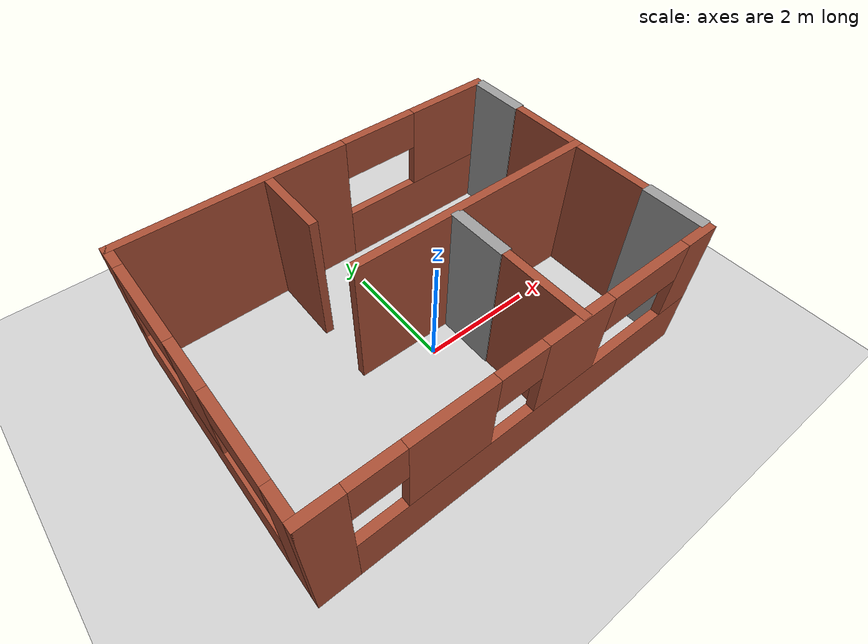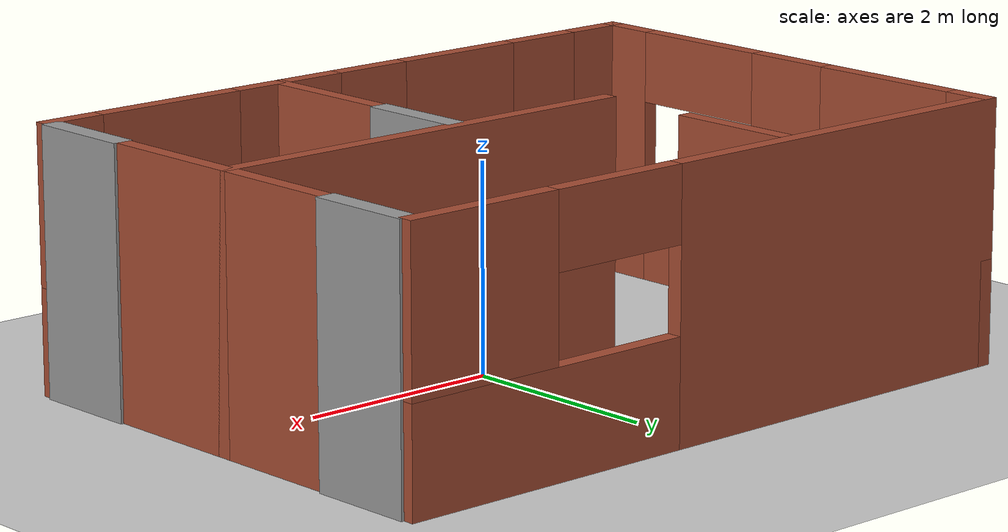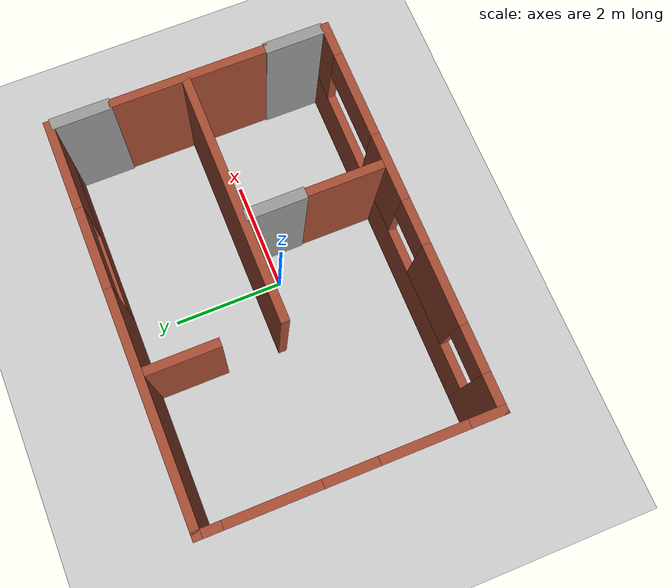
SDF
<sdf version="1.7">
 <world name="default">
  <light name="sun" type="directional">
   <pose>0 0 10 0 -0 0</pose>
   <diffuse>0.8 0.8 0.8 1</diffuse>
   <specular>0.2 0.2 0.2 1</specular>
   <attenuation>
    <range>1000</range>
    <constant>0.9</constant>
    <linear>0.01</linear>
    <quadratic>0.001</quadratic>
   </attenuation>
   <direction>-0.5 0.1 -0.9</direction>
   <spot><inner_angle>0</inner_angle><outer_angle>0</outer_angle><falloff>0</falloff></spot>
  </light>
  <model name="ground_plane">
   <static>1</static>
   <link name="link">
    <collision name="collision">
     <geometry><plane><normal>0 0 1</normal><size>100 100</size></plane></geometry>
     <surface>
      <contact><collide_bitmask>65535</collide_bitmask></contact>
      <friction><ode><mu>100</mu><mu2>50</mu2></ode></friction>
     </surface>
    </collision>
    <visual name="visual">
     <cast_shadows>0</cast_shadows>
     <geometry><plane><normal>0 0 1</normal><size>100 100</size></plane></geometry>
     <material>
      <script><uri>file://media/materials/scripts/gazebo.material</uri><name>Gazebo/Grey</name></script>
     </material>
    </visual>
   </link>
  </model>
  <gravity>0 0 -9.8</gravity>
  <magnetic_field>6e-06 2.3e-05 -4.2e-05</magnetic_field>
  <atmosphere type="adiabatic"/>
  <physics type="ode">
   <max_step_size>0.001</max_step_size>
   <real_time_factor>1</real_time_factor>
   <real_time_update_rate>1000</real_time_update_rate>
  </physics>
  <scene><ambient>0.4 0.4 0.4 1</ambient><background>0.7 0.7 0.7 1</background><shadows>1</shadows></scene>
  <spherical_coordinates>
   <surface_model>EARTH_WGS84</surface_model>
   <latitude_deg>0</latitude_deg>
   <longitude_deg>0</longitude_deg>
   <elevation>0</elevation>
   <heading_deg>0</heading_deg>
  </spherical_coordinates>
  <model name="meu_mapa2">
   <pose>-0.18123 1.4884 0 0 -0 0</pose>
   <link name="Door_7">
    <collision name="Door_7_Collision">
     <geometry><box><size>1.054 0.2 2.5</size></box></geometry>
     <pose>0 0 1.25 0 -0 0</pose>
    </collision>
    <visual name="Door_7_Visual">
     <pose>0 0 1.25 0 -0 0</pose>
     <geometry><box><size>1.054 0.2 2.5</size></box></geometry>
     <material>
      <script><uri>file://media/materials/scripts/gazebo.material</uri><name>Gazebo/Grey</name></script>
     </material>
    </visual>
    <pose>3.42812 -3.00431 0 0 -0 1.5691</pose>
   </link>
   <link name="Door_8">
    <collision name="Door_8_Collision">
     <geometry><box><size>1.03035 0.2 2.5</size></box></geometry>
     <pose>0 0 1.25 0 -0 0</pose>
    </collision>
    <visual name="Door_8_Visual">
     <pose>0 0 1.25 0 -0 0</pose>
     <geometry><box><size>1.03035 0.2 2.5</size></box></geometry>
     <material>
      <script><uri>file://media/materials/scripts/gazebo.material</uri><name>Gazebo/Grey</name></script>
     </material>
    </visual>
    <pose>3.42778 0.735647 0 0 -0 1.57202</pose>
   </link>
   <link name="Door_9">
    <collision name="Door_9_Collision">
     <geometry><box><size>1.048 0.2 2.5</size></box></geometry>
     <pose>0 0 1.25 0 -0 0</pose>
    </collision>
    <visual name="Door_9_Visual">
     <pose>0 0 1.25 0 -0 0</pose>
     <geometry><box><size>1.048 0.2 2.5</size></box></geometry>
     <material>
      <script><uri>file://media/materials/scripts/gazebo.material</uri><name>Gazebo/Grey</name></script>
     </material>
    </visual>
    <pose>0.829551 -1.63396 0 0 0 -1.56781</pose>
   </link>
   <link name="Wall_39">
    <pose>0 -3.5705 0 0 -0 0</pose>
    <visual name="Wall_39_Visual_0">
     <pose>-3.1649 0 1.25 0 -0 0</pose>
     <geometry><box><size>0.670203 0.15 2.5</size></box></geometry>
     <material>
      <script><uri>file://media/materials/scripts/gazebo.material</uri><name>Gazebo/Bricks</name></script>
      <ambient>1 1 1 1</ambient>
     </material>
     <meta><layer>0</layer></meta>
    </visual>
    <collision name="Wall_39_Collision_0">
     <geometry><box><size>0.670203 0.15 2.5</size></box></geometry>
     <pose>-3.1649 0 1.25 0 -0 0</pose>
    </collision>
    <visual name="Wall_39_Visual_1">
     <pose>0.335102 0 0.5 0 -0 0</pose>
     <geometry><box><size>6.3298 0.15 1</size></box></geometry>
     <material>
      <script><uri>file://media/materials/scripts/gazebo.material</uri><name>Gazebo/Bricks</name></script>
      <ambient>1 1 1 1</ambient>
     </material>
     <meta><layer>0</layer></meta>
    </visual>
    <collision name="Wall_39_Collision_1">
     <geometry><box><size>6.3298 0.15 1</size></box></geometry>
     <pose>0.335102 0 0.5 0 -0 0</pose>
    </collision>
    <visual name="Wall_39_Visual_2">
     <pose>-1.34357 0 1.75 0 -0 0</pose>
     <geometry><box><size>1.37245 0.15 1.5</size></box></geometry>
     <material>
      <script><uri>file://media/materials/scripts/gazebo.material</uri><name>Gazebo/Bricks</name></script>
      <ambient>1 1 1 1</ambient>
     </material>
     <meta><layer>0</layer></meta>
    </visual>
    <collision name="Wall_39_Collision_2">
     <geometry><box><size>1.37245 0.15 1.5</size></box></geometry>
     <pose>-1.34357 0 1.75 0 -0 0</pose>
    </collision>
    <visual name="Wall_39_Visual_3">
     <pose>0.742884 0 1.75 0 -0 0</pose>
     <geometry><box><size>1.20045 0.15 1.5</size></box></geometry>
     <material>
      <script><uri>file://media/materials/scripts/gazebo.material</uri><name>Gazebo/Bricks</name></script>
      <ambient>1 1 1 1</ambient>
     </material>
     <meta><layer>0</layer></meta>
    </visual>
    <collision name="Wall_39_Collision_3">
     <geometry><box><size>1.20045 0.15 1.5</size></box></geometry>
     <pose>0.742884 0 1.75 0 -0 0</pose>
    </collision>
    <visual name="Wall_39_Visual_4">
     <pose>3.19156 0 1.75 0 -0 0</pose>
     <geometry><box><size>0.616889 0.15 1.5</size></box></geometry>
     <material>
      <script><uri>file://media/materials/scripts/gazebo.material</uri><name>Gazebo/Bricks</name></script>
      <ambient>1 1 1 1</ambient>
     </material>
     <meta><layer>0</layer></meta>
    </visual>
    <collision name="Wall_39_Collision_4">
     <geometry><box><size>0.616889 0.15 1.5</size></box></geometry>
     <pose>3.19156 0 1.75 0 -0 0</pose>
    </collision>
    <visual name="Wall_39_Visual_5">
     <pose>-2.4298 0 2.15 0 -0 0</pose>
     <geometry><box><size>0.8 0.15 0.7</size></box></geometry>
     <material>
      <script><uri>file://media/materials/scripts/gazebo.material</uri><name>Gazebo/Bricks</name></script>
      <ambient>1 1 1 1</ambient>
     </material>
     <meta><layer>0</layer></meta>
    </visual>
    <collision name="Wall_39_Collision_5">
     <geometry><box><size>0.8 0.15 0.7</size></box></geometry>
     <pose>-2.4298 0 2.15 0 -0 0</pose>
    </collision>
    <visual name="Wall_39_Visual_6">
     <pose>-0.257342 0 2.15 0 -0 0</pose>
     <geometry><box><size>0.8 0.15 0.7</size></box></geometry>
     <material>
      <script><uri>file://media/materials/scripts/gazebo.material</uri><name>Gazebo/Bricks</name></script>
      <ambient>1 1 1 1</ambient>
     </material>
     <meta><layer>0</layer></meta>
    </visual>
    <collision name="Wall_39_Collision_6">
     <geometry><box><size>0.8 0.15 0.7</size></box></geometry>
     <pose>-0.257342 0 2.15 0 -0 0</pose>
    </collision>
    <visual name="Wall_39_Visual_7">
     <pose>2.11311 0 2.15 0 -0 0</pose>
     <geometry><box><size>1.54 0.15 0.7</size></box></geometry>
     <material>
      <script><uri>file://media/materials/scripts/gazebo.material</uri><name>Gazebo/Bricks</name></script>
      <ambient>1 1 1 1</ambient>
     </material>
     <meta><layer>0</layer></meta>
    </visual>
    <collision name="Wall_39_Collision_7">
     <geometry><box><size>1.54 0.15 0.7</size></box></geometry>
     <pose>2.11311 0 2.15 0 -0 0</pose>
    </collision>
   </link>
   <link name="Wall_41">
    <pose>-3.425 -1.1455 0 0 -0 1.5708</pose>
    <visual name="Wall_41_Visual_0">
     <pose>-2.19029 0 1.25 0 -0 0</pose>
     <geometry><box><size>0.619419 0.15 2.5</size></box></geometry>
     <material>
      <script><uri>file://media/materials/scripts/gazebo.material</uri><name>Gazebo/Bricks</name></script>
      <ambient>1 1 1 1</ambient>
     </material>
     <meta><layer>0</layer></meta>
    </visual>
    <collision name="Wall_41_Collision_0">
     <geometry><box><size>0.619419 0.15 2.5</size></box></geometry>
     <pose>-2.19029 0 1.25 0 -0 0</pose>
    </collision>
    <visual name="Wall_41_Visual_1">
     <pose>0.30971 0 0.5 0 -0 0</pose>
     <geometry><box><size>4.38058 0.15 1</size></box></geometry>
     <material>
      <script><uri>file://media/materials/scripts/gazebo.material</uri><name>Gazebo/Bricks</name></script>
      <ambient>1 1 1 1</ambient>
     </material>
     <meta><layer>0</layer></meta>
    </visual>
    <collision name="Wall_41_Collision_1">
     <geometry><box><size>4.38058 0.15 1</size></box></geometry>
     <pose>0.30971 0 0.5 0 -0 0</pose>
    </collision>
    <visual name="Wall_41_Visual_2">
     <pose>0.018413 0 1.75 0 -0 0</pose>
     <geometry><box><size>0.894514 0.15 1.5</size></box></geometry>
     <material>
      <script><uri>file://media/materials/scripts/gazebo.material</uri><name>Gazebo/Bricks</name></script>
      <ambient>1 1 1 1</ambient>
     </material>
     <meta><layer>0</layer></meta>
    </visual>
    <collision name="Wall_41_Collision_2">
     <geometry><box><size>0.894514 0.15 1.5</size></box></geometry>
     <pose>0.018413 0 1.75 0 -0 0</pose>
    </collision>
    <visual name="Wall_41_Visual_3">
     <pose>2.26301 0 1.75 0 -0 0</pose>
     <geometry><box><size>0.473971 0.15 1.5</size></box></geometry>
     <material>
      <script><uri>file://media/materials/scripts/gazebo.material</uri><name>Gazebo/Bricks</name></script>
      <ambient>1 1 1 1</ambient>
     </material>
     <meta><layer>0</layer></meta>
    </visual>
    <collision name="Wall_41_Collision_3">
     <geometry><box><size>0.473971 0.15 1.5</size></box></geometry>
     <pose>2.26301 0 1.75 0 -0 0</pose>
    </collision>
    <visual name="Wall_41_Visual_4">
     <pose>-1.15471 0 2.15 0 -0 0</pose>
     <geometry><box><size>1.45174 0.15 0.7</size></box></geometry>
     <material>
      <script><uri>file://media/materials/scripts/gazebo.material</uri><name>Gazebo/Bricks</name></script>
      <ambient>1 1 1 1</ambient>
     </material>
     <meta><layer>0</layer></meta>
    </visual>
    <collision name="Wall_41_Collision_4">
     <geometry><box><size>1.45174 0.15 0.7</size></box></geometry>
     <pose>-1.15471 0 2.15 0 -0 0</pose>
    </collision>
    <visual name="Wall_41_Visual_5">
     <pose>1.24585 0 2.15 0 -0 0</pose>
     <geometry><box><size>1.56036 0.15 0.7</size></box></geometry>
     <material>
      <script><uri>file://media/materials/scripts/gazebo.material</uri><name>Gazebo/Bricks</name></script>
      <ambient>1 1 1 1</ambient>
     </material>
     <meta><layer>0</layer></meta>
    </visual>
    <collision name="Wall_41_Collision_5">
     <geometry><box><size>1.56036 0.15 0.7</size></box></geometry>
     <pose>1.24585 0 2.15 0 -0 0</pose>
    </collision>
   </link>
   <link name="Wall_42">
    <pose>0 1.2795 0 0 -0 0</pose>
    <visual name="Wall_42_Visual_0">
     <pose>-1.5029 0 1.25 0 -0 0</pose>
     <geometry><box><size>3.9942 0.15 2.5</size></box></geometry>
     <material>
      <script><uri>file://media/materials/scripts/gazebo.material</uri><name>Gazebo/Bricks</name></script>
      <ambient>1 1 1 1</ambient>
     </material>
     <meta><layer>0</layer></meta>
    </visual>
    <collision name="Wall_42_Collision_0">
     <geometry><box><size>3.9942 0.15 2.5</size></box></geometry>
     <pose>-1.5029 0 1.25 0 -0 0</pose>
    </collision>
    <visual name="Wall_42_Visual_1">
     <pose>1.9971 0 0.5 0 -0 0</pose>
     <geometry><box><size>3.0058 0.15 1</size></box></geometry>
     <material>
      <script><uri>file://media/materials/scripts/gazebo.material</uri><name>Gazebo/Bricks</name></script>
      <ambient>1 1 1 1</ambient>
     </material>
     <meta><layer>0</layer></meta>
    </visual>
    <collision name="Wall_42_Collision_1">
     <geometry><box><size>3.0058 0.15 1</size></box></geometry>
     <pose>1.9971 0 0.5 0 -0 0</pose>
    </collision>
    <visual name="Wall_42_Visual_2">
     <pose>2.7011 0 1.75 0 -0 0</pose>
     <geometry><box><size>1.5978 0.15 1.5</size></box></geometry>
     <material>
      <script><uri>file://media/materials/scripts/gazebo.material</uri><name>Gazebo/Bricks</name></script>
      <ambient>1 1 1 1</ambient>
     </material>
     <meta><layer>0</layer></meta>
    </visual>
    <collision name="Wall_42_Collision_2">
     <geometry><box><size>1.5978 0.15 1.5</size></box></geometry>
     <pose>2.7011 0 1.75 0 -0 0</pose>
    </collision>
    <visual name="Wall_42_Visual_3">
     <pose>1.1982 0 2.15 0 -0 0</pose>
     <geometry><box><size>1.408 0.15 0.7</size></box></geometry>
     <material>
      <script><uri>file://media/materials/scripts/gazebo.material</uri><name>Gazebo/Bricks</name></script>
      <ambient>1 1 1 1</ambient>
     </material>
     <meta><layer>0</layer></meta>
    </visual>
    <collision name="Wall_42_Collision_3">
     <geometry><box><size>1.408 0.15 0.7</size></box></geometry>
     <pose>1.1982 0 2.15 0 -0 0</pose>
    </collision>
   </link>
   <link name="Wall_47">
    <collision name="Wall_47_Collision">
     <geometry><box><size>2.8 0.15 2.5</size></box></geometry>
     <pose>0 0 1.25 0 -0 0</pose>
    </collision>
    <visual name="Wall_47_Visual">
     <pose>0 0 1.25 0 -0 0</pose>
     <geometry><box><size>2.8 0.15 2.5</size></box></geometry>
     <material>
      <script><uri>file://media/materials/scripts/gazebo.material</uri><name>Gazebo/Bricks</name></script>
      <ambient>1 1 1 1</ambient>
     </material>
     <meta><layer>0</layer></meta>
    </visual>
    <pose>3.425 -1.1455 0 0 -0 1.5708</pose>
   </link>
   <link name="Wall_51">
    <collision name="Wall_51_Collision">
     <geometry><box><size>4.5 0.15 2.5</size></box></geometry>
     <pose>0 0 1.25 0 -0 0</pose>
    </collision>
    <visual name="Wall_51_Visual">
     <pose>0 0 1.25 0 -0 0</pose>
     <geometry><box><size>4.5 0.15 2.5</size></box></geometry>
     <material>
      <script><uri>file://media/materials/scripts/gazebo.material</uri><name>Gazebo/Bricks</name></script>
      <ambient>1 1 1 1</ambient>
     </material>
     <meta><layer>0</layer></meta>
    </visual>
    <pose>1.25 -1.0705 0 0 -0 3.14159</pose>
   </link>
   <link name="Wall_54">
    <collision name="Wall_54_Collision">
     <geometry><box><size>1.25 0.15 2.5</size></box></geometry>
     <pose>0 0 1.25 0 -0 0</pose>
    </collision>
    <visual name="Wall_54_Visual">
     <pose>0 0 1.25 0 -0 0</pose>
     <geometry><box><size>1.25 0.15 2.5</size></box></geometry>
     <material>
      <script><uri>file://media/materials/scripts/gazebo.material</uri><name>Gazebo/Bricks</name></script>
      <ambient>1 1 1 1</ambient>
     </material>
     <meta><layer>0</layer></meta>
    </visual>
    <pose>-0.925 0.5795 0 0 -0 1.5708</pose>
   </link>
   <link name="Wall_60">
    <collision name="Wall_60_Collision">
     <geometry><box><size>1.5 0.15 2.5</size></box></geometry>
     <pose>0 0 1.25 0 -0 0</pose>
    </collision>
    <visual name="Wall_60_Visual">
     <pose>0 0 1.25 0 -0 0</pose>
     <geometry><box><size>1.5 0.15 2.5</size></box></geometry>
     <material>
      <script><uri>file://media/materials/scripts/gazebo.material</uri><name>Gazebo/Bricks</name></script>
      <ambient>1 1 1 1</ambient>
     </material>
     <meta><layer>0</layer></meta>
    </visual>
    <pose>0.825 -2.8815 0 0 -0 -1.5708</pose>
   </link>
   <static>1</static>
  </model>
 </world>
</sdf>
